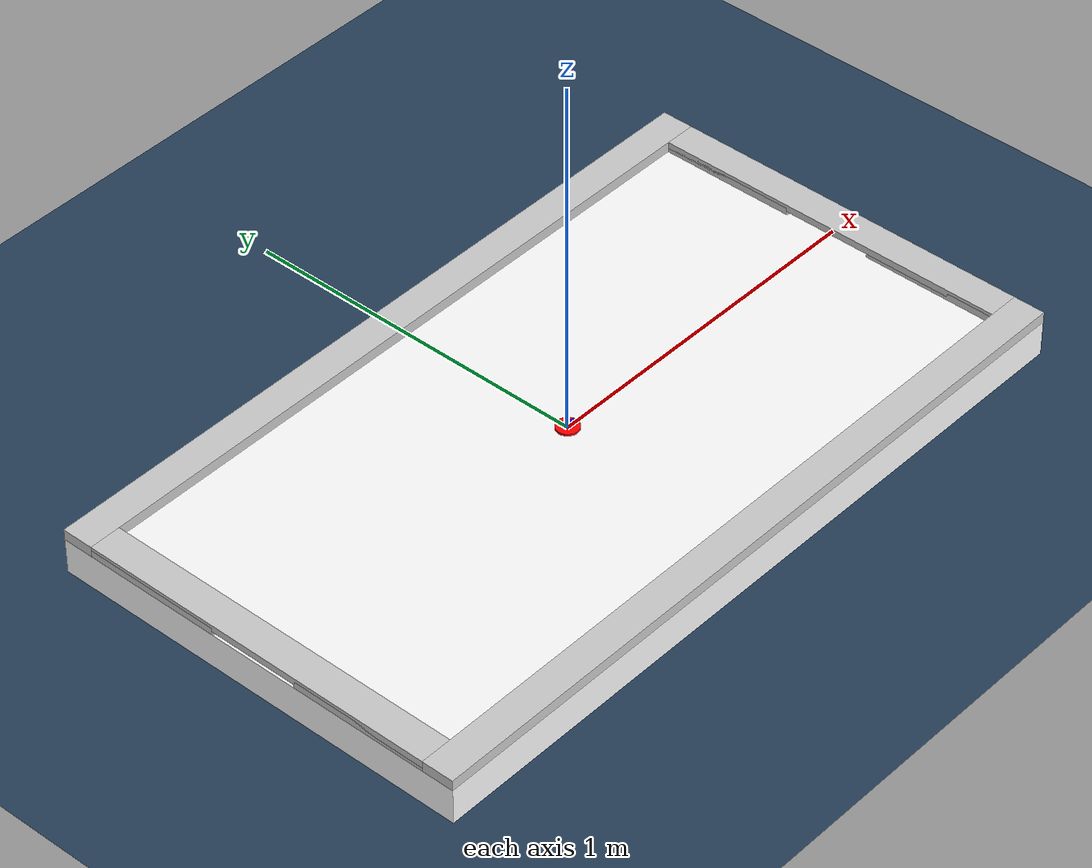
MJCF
<mujoco model="table">
    <option timestep="0.001" cone="elliptic" impratio="1"/>

    <asset>
        <material name="grey" specular="0.5" shininess="0.25" rgba="0.8 0.8 0.8 1"/>
        <material name="white" specular="0.5" shininess="0.25" rgba="1.0 1.0 1.0 1"/>
        <material name="red" specular="0.5" shininess="0.25" rgba="1.0 0.0 0.0 1"/>
        <material name="blue" specular="0.5" shininess="0.25" rgba="0.0 0.0 1.0 1"/>
        <material name="transparent" specular="0.5" shininess="0.25" rgba="0.0 0.0 1.0 0"/>

        <texture type="skybox" builtin="gradient" rgb1="0.3 0.5 0.7" rgb2="0 0 0" width="512"
                 height="3072"/>
        <texture type="2d" name="groundplane" builtin="checker" mark="edge" rgb1="0.2 0.3 0.4"
                 rgb2="0.1 0.2 0.3" markrgb="0.8 0.8 0.8" width="300" height="300"/>
        <material name="groundplane" texture="groundplane" texuniform="true" texrepeat="5 5"
                  reflectance="0.2"/>

         <mesh name="rim" file="table_rim.stl" scale="0.001 0.001 0.001" smoothnormal="true"/>
    </asset>

    <default>
        <geom condim="4" solref="0.02 0.3"/>
        <default class="rim">
            <geom type="box" material="grey" condim="6" friction="10000 0.0 0.0" priority="1"
                  solref="0.0075 0.1" solimp="0.99 0.999 0.001 0.5 2"/>
        </default>
    </default>

    <worldbody>
        <body name="table">
            <body name="table_surface">
                <geom name="surface" type="box" material="white" size="1.064 0.609 0.0505" pos="0 0 -0.0505"
                      condim="4" friction="0.08 0.08 0.0" priority="1"
                      solref="0.0125 0.5" solimp="0.9 0.999 0.001 0.5 2"/>
            </body>
            <body name="rim">

                <geom name="rim_home_l" class="rim" type="mesh" mesh="rim" pos="1.019 0.322 0."/>
                <geom name="rim_home_r" class="rim" type="mesh" mesh="rim" pos="1.019 -0.322 0." quat="0 0 0 1"/>

                <geom name="rim_home_top" class="rim" size="0.045 0.519 0.01" pos="-1.019 0 0.02"
                      contype="0" conaffinity="0"/>

                <geom name="rim_left" class="rim" size="1.064 0.045 0.015" pos="0 0.564 0.015"/>
                <geom name="rim_right" class="rim" size="1.064 0.045 0.015" pos="0 -0.564 0.015"/>

                <geom name="rim_away_l" class="rim" type="mesh" mesh="rim" pos="-1.019 0.322 0."/>
                <geom name="rim_away_r" class="rim" type="mesh" mesh="rim" pos="-1.019 -0.322 0." quat="0 0 0 1"/>
                <geom name="rim_away_top" class="rim" size="0.045 0.519 0.01" pos="1.019 0 0.02"
                      contype="0" conaffinity="0"/>
            </body>
        </body>

        <body name="base" pos="0 0 0">
            <joint name="puck_x" type="slide" axis="1 0 0" damping="0.005" limited="false"/>
            <joint name="puck_y" type="slide" axis="0 1 0" damping="0.005" limited="false"/>
            <joint name="puck_yaw" type="hinge" axis="0 0 1" damping="2e-6" limited="false"/>
            <body name="puck">
                <geom pos="0 0 0.01" name="puck" type="cylinder" rgba="0 0 0 0" size="0.03165 0.01"
                      condim="4" priority="0"/>
                <site pos="0 0 0.003" name="puck_site" type="cylinder" material="red" size="0.03165 0.003"/>
                <site pos="0.02 0 0.003" type="cylinder" material="blue" size="0.01 0.0031"/>
                <inertial pos="0 0 0" mass="0.01" diaginertia="2.5e-6 2.5e-6 5e-6"/>
            </body>
        </body>

        <site name="puck_vis" type="ellipsoid" size="0.03165 0.03165 0.004" pos="0 0 -0.05"/>
        <site name="puck_vis_rot" type="cylinder" size="0.0045 0.006" rgba="1 0 0 1" pos="0 0 -0.05"/>
    </worldbody>

    <contact>
        <exclude body1="puck" body2="table_surface"/>
    </contact>

    <worldbody>
        <light pos="0 0 3" dir="0 0 -1" directional="true"/>
        <geom pos="0 0 -0.1" name="floor" size="0 0 0.05" type="plane" material="groundplane"/>
    </worldbody>
</mujoco>
